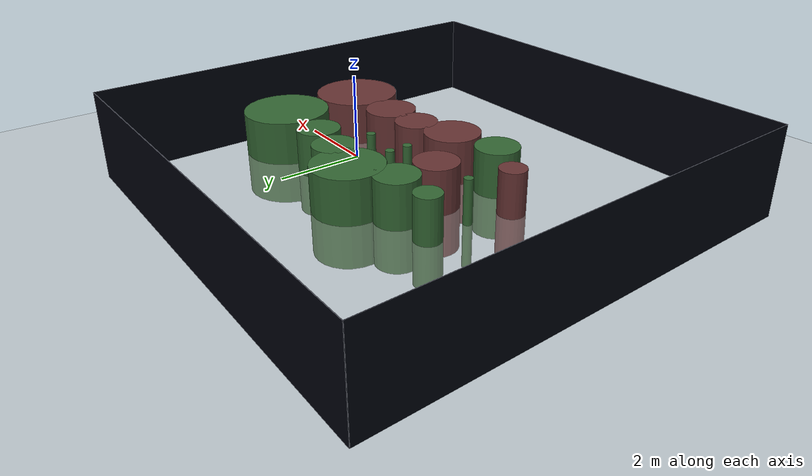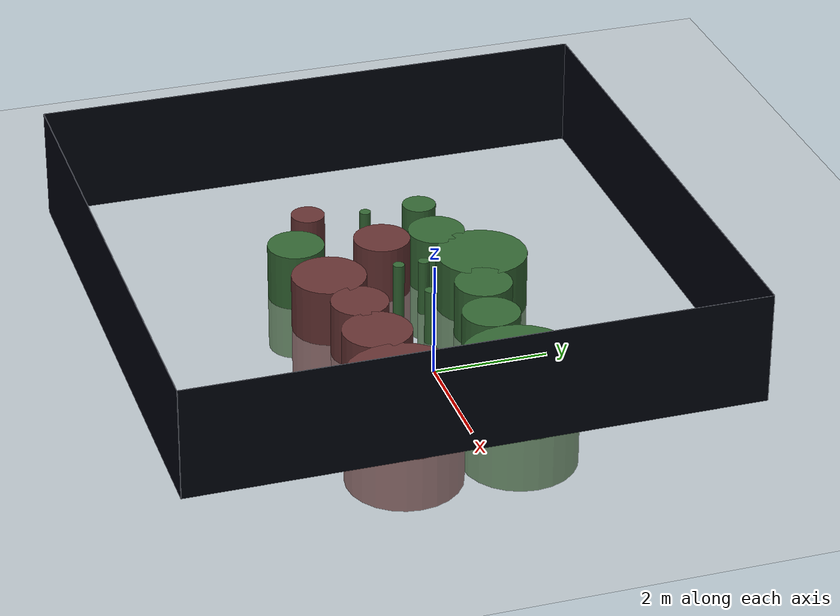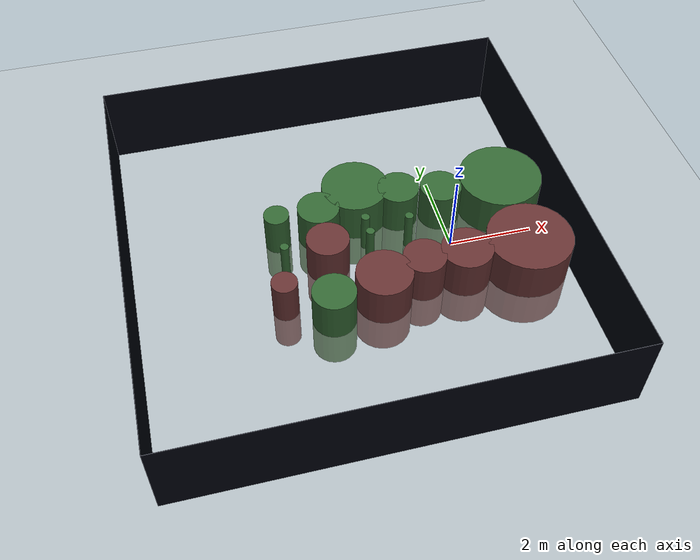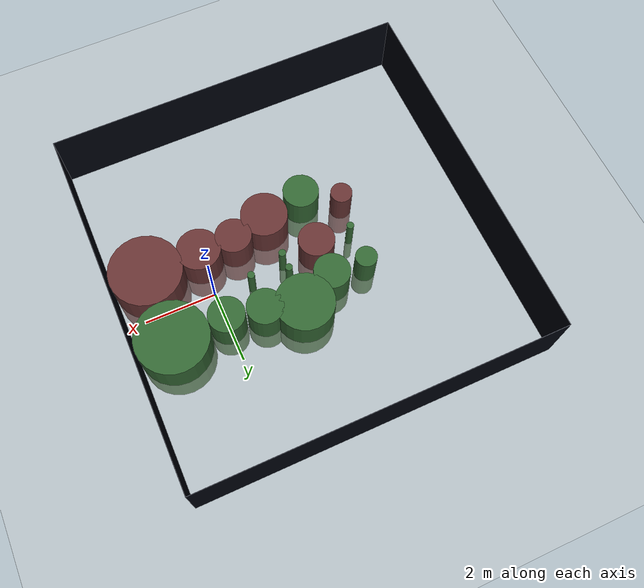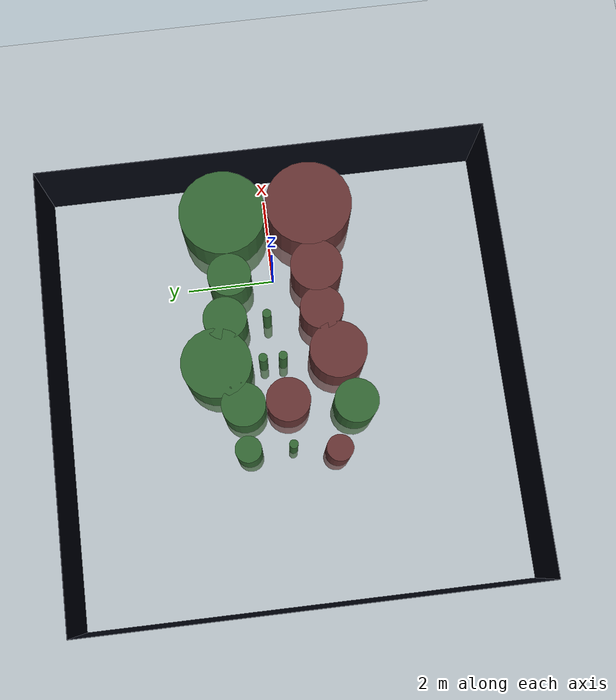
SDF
<?xml version="1.0"?>
<sdf version='1.8'>
    <world name='maze'>
        <physics name='1ms' type='ignored'>
            <max_step_size>0.003</max_step_size>
            <real_time_factor>1</real_time_factor>
            <real_time_update_rate>1000</real_time_update_rate>
        </physics>
        <plugin name='ignition::gazebo::systems::Physics' filename='ignition-gazebo-physics-system' />
        <plugin name='ignition::gazebo::systems::UserCommands' filename='ignition-gazebo-user-commands-system' />
        <plugin name='ignition::gazebo::systems::SceneBroadcaster' filename='ignition-gazebo-scene-broadcaster-system' />
        <plugin name='ignition::gazebo::systems::Contact' filename='ignition-gazebo-contact-system' />
        <light name='sun' type='directional'>
            <cast_shadows>1</cast_shadows>
            <pose>0 0 10 0 -0 0</pose>
            <diffuse>0.8 0.8 0.8 1</diffuse>
            <specular>0.2 0.2 0.2 1</specular>
            <attenuation>
                <range>1000</range>
                <constant>0.90000000000000002</constant>
                <linear>0.01</linear>
                <quadratic>0.001</quadratic>
            </attenuation>
            <direction>-0.5 0.1 -0.9</direction>
            <spot>
                <inner_angle>0</inner_angle>
                <outer_angle>0</outer_angle>
                <falloff>0</falloff>
            </spot>
        </light>
        <gravity>0 0 -9.8</gravity>
        <magnetic_field>6e-06 2.3e-05 -4.2e-05</magnetic_field>
        <atmosphere type='adiabatic' />
        <scene>
            <ambient>0.4 0.4 0.4 1</ambient>
            <background>0.7 0.7 0.7 1</background>
            <shadows>1</shadows>
        </scene>
        <model name='ground_plane'>
            <static>1</static>
            <link name='link'>
                <collision name='collision'>
                    <geometry>
                        <plane>
                            <normal>0 0 1</normal>
                            <size>100 100</size>
                        </plane>
                    </geometry>
                    <surface>
                        <friction>
                            <ode />
                        </friction>
                        <bounce />
                        <contact />
                    </surface>
                </collision>
                <visual name='visual'>
                    <geometry>
                        <plane>
                            <normal>0 0 1</normal>
                            <size>100 100</size>
                        </plane>
                    </geometry>
                    <material>
                        <ambient>0.8 0.8 0.8 1</ambient>
                        <diffuse>0.8 0.8 0.8 1</diffuse>
                        <specular>0.8 0.8 0.8 1</specular>
                    </material>
                    <plugin name='__default__' filename='__default__' />
                </visual>
            </link>
            <plugin name='__default__' filename='__default__' />
            <pose>0 0 0 0 -0 0</pose>
        </model>

        <model name='border'>
            <pose>0 0 1 0 0 0</pose>
            <static>true</static>
            <link name='wall1'>
                <pose>-7.5 -0 0 0 0 0</pose>
                <static>true</static>
                <collision name='wall1_collision'>
                    <geometry>
                        <box>
                            <size>0.01 10 2</size>
                        </box>
                    </geometry>
                </collision>
                <visual name='wall1_visual'>
                    <geometry>
                        <box>
                            <size>0.01 10 2</size>
                        </box>
                    </geometry>
                    <material>
                        <ambient>0.1 0.1 0.1 1</ambient>
                        <diffuse>0 0.01 0.05 1</diffuse>
                        <specular>0 0.01 0.05 1</specular>
                    </material>
                </visual>
            </link>
            <link name='wall2'>
                <pose>2.5 0 0 0 0 0</pose>
                <static>true</static>
                <collision name='wall2_collision'>
                    <geometry>
                        <box>
                            <size>0.01 10 2</size>
                        </box>
                    </geometry>
                </collision>
                <visual name='wall2_visual'>
                    <geometry>
                        <box>
                            <size>0.01 10 2</size>
                        </box>
                    </geometry>
                    <material>
                        <ambient>0.1 0.1 0.1 1</ambient>
                        <diffuse>0 0.01 0.05 1</diffuse>
                        <specular>0 0.01 0.05 1</specular>
                    </material>
                </visual>
            </link>
            <link name='wall3'>
                <pose>-2.5 5.005 0 0 0 0</pose>
                <static>true</static>
                <collision name='wall3_collision'>
                    <geometry>
                        <box>
                            <size>10 0.01 2</size>
                        </box>
                    </geometry>
                </collision>
                <visual name='wall3_visual'>
                    <geometry>
                        <box>
                            <size>10 0.01 2</size>
                        </box>
                    </geometry>
                    <material>
                        <ambient>0.1 0.1 0.1 1</ambient>
                        <diffuse>0 0.01 0.05 1</diffuse>
                        <specular>0 0.01 0.05 1</specular>
                    </material>
                </visual>
            </link>
            <link name='wall4'>
                <pose>-2.5 -5.005 0 0 0 0</pose>
                <static>true</static>
                <collision name='wall4_collision'>
                    <geometry>
                        <box>
                            <size>10 0.01 2</size>
                        </box>
                    </geometry>
                    <material>
                        <ambient>0.1 0.1 0.1 1</ambient>
                        <diffuse>0 0.01 0.05 1</diffuse>
                        <specular>0 0.01 0.05 1</specular>
                    </material>
                </collision>
                <visual name='wall4_visual'>
                    <geometry>
                        <box>
                            <size>10 0.01 2</size>
                        </box>
                    </geometry>
                    <material>
                        <ambient>0.1 0.1 0.1 1</ambient>
                        <diffuse>0 0.01 0.05 1</diffuse>
                        <specular>0 0.01 0.05 1</specular>
                    </material>
                </visual>
            </link>
        </model>
        <model name='obstacles'>
            <!-- Left side cylinders -->
            <link name='cylinder_left_-1'>
                <pose>1.5 -1 0 0 0 0</pose>
                <static>true</static>
                <collision name='cylinder_left_-1_collision'>
                    <geometry>
                        <cylinder>
                            <radius>1.0</radius>
                            <length>2</length>
                        </cylinder>
                    </geometry>
                </collision>
                <visual name='cylinder_left_-1_visual'>
                    <geometry>
                        <cylinder>
                            <radius>1.0</radius>
                            <length>2</length>
                        </cylinder>
                    </geometry>
                    <material>
                        <ambient>0.2 0.1 0.1 1</ambient>
                        <diffuse>0.4 0.2 0.2 1</diffuse>
                        <specular>0.1 0.05 0.05 1</specular>
                    </material>
                </visual>
            </link>
            <link name='cylinder_left_0'>
                <pose>0 -1 0 0 0 0</pose>
                <static>true</static>
                <collision name='cylinder_left_0_collision'>
                    <geometry>
                        <cylinder>
                            <radius>0.6</radius>
                            <length>2</length>
                        </cylinder>
                    </geometry>
                </collision>
                <visual name='cylinder_left_0_visual'>
                    <geometry>
                        <cylinder>
                            <radius>0.6</radius>
                            <length>2</length>
                        </cylinder>
                    </geometry>
                    <material>
                        <ambient>0.2 0.1 0.1 1</ambient>
                        <diffuse>0.4 0.2 0.2 1</diffuse>
                        <specular>0.1 0.05 0.05 1</specular>
                    </material>
                </visual>
            </link>

            <link name='cylinder_left_1'>
                <pose>-1 -1 0 0 0 0</pose>
                <static>true</static>
                <collision name='cylinder_left_1_collision'>
                    <geometry>
                        <cylinder>
                            <radius>0.5</radius>
                            <length>2</length>
                        </cylinder>
                    </geometry>
                </collision>
                <visual name='cylinder_left_1_visual'>
                    <geometry>
                        <cylinder>
                            <radius>0.5</radius>
                            <length>2</length>
                        </cylinder>
                    </geometry>
                    <material>
                        <ambient>0.2 0.1 0.1 1</ambient>
                        <diffuse>0.4 0.2 0.2 1</diffuse>
                        <specular>0.1 0.05 0.05 1</specular>
                    </material>
                </visual>
            </link>

            <link name='cylinder_left_2'>
                <pose>-2 -1.25 0 0 0 0</pose>
                <static>true</static>
                <collision name='cylinder_left_2_collision'>
                    <geometry>
                        <cylinder>
                            <radius>0.65</radius>
                            <length>2</length>
                        </cylinder>
                    </geometry>
                </collision>
                <visual name='cylinder_left_2_visual'>
                    <geometry>
                        <cylinder>
                            <radius>0.65</radius>
                            <length>2</length>
                        </cylinder>
                    </geometry>
                    <material>
                        <ambient>0.2 0.1 0.1 1</ambient>
                        <diffuse>0.4 0.2 0.2 1</diffuse>
                        <specular>0.1 0.05 0.05 1</specular>
                    </material>
                </visual>
            </link>

            <link name='cylinder_left_3'>
                <pose>-3 0 0 0 0 0</pose>
                <static>true</static>
                <collision name='cylinder_left_3_collision'>
                    <geometry>
                        <cylinder>
                            <radius>0.5</radius>
                            <length>2</length>
                        </cylinder>
                    </geometry>
                </collision>
                <visual name='cylinder_left_3_visual'>
                    <geometry>
                        <cylinder>
                            <radius>0.5</radius>
                            <length>2</length>
                        </cylinder>
                    </geometry>
                    <material>
                        <ambient>0.2 0.1 0.1 1</ambient>
                        <diffuse>0.4 0.2 0.2 1</diffuse>
                        <specular>0.1 0.05 0.05 1</specular>
                    </material>
                </visual>
            </link>

            <link name='cylinder_left_4'>
                <pose>-4.2 -1 0 0 0 0</pose>
                <static>true</static>
                <collision name='cylinder_left_4_collision'>
                    <geometry>
                        <cylinder>
                            <radius>0.3</radius>
                            <length>2</length>
                        </cylinder>
                    </geometry>
                </collision>
                <visual name='cylinder_left_4_visual'>
                    <geometry>
                        <cylinder>
                            <radius>0.3</radius>
                            <length>2</length>
                        </cylinder>
                    </geometry>
                    <material>
                        <ambient>0.2 0.1 0.1 1</ambient>
                        <diffuse>0.4 0.2 0.2 1</diffuse>
                        <specular>0.1 0.05 0.05 1</specular>
                    </material>
                </visual>
            </link>

            <!-- Right side cylinders -->
            <link name='cylinder_med_0'>
                <pose>-1 1.2 0 0 0 0</pose>
                <static>true</static>
                <collision name='cylinder_med_0_collision'>
                    <geometry>
                        <cylinder>
                            <radius>0.5</radius>
                            <length>2</length>
                        </cylinder>
                    </geometry>
                </collision>
                <visual name='cylinder_med_0_collision'>
                    <geometry>
                        <cylinder>
                            <radius>0.5</radius>
                            <length>2</length>
                        </cylinder>
                    </geometry>
                    <material>
                        <ambient>0.1 0.2 0.1 1</ambient>
                        <diffuse>0.2 0.4 0.2 1</diffuse>
                        <specular>0.05 0.1 0.05 1</specular>
                    </material>
                </visual>
            </link>
            <link name='cylinder_right_0'>
                <pose>0 1 0 0 0 0</pose>
                <static>true</static>
                <collision name='cylinder_right_0_collision'>
                    <geometry>
                        <cylinder>
                            <radius>0.5</radius>
                            <length>2</length>
                        </cylinder>
                    </geometry>
                </collision>
                <visual name='cylinder_right_0_visual'>
                    <geometry>
                        <cylinder>
                            <radius>0.5</radius>
                            <length>2</length>
                        </cylinder>
                    </geometry>
                    <material>
                        <ambient>0.1 0.2 0.1 1</ambient>
                        <diffuse>0.2 0.4 0.2 1</diffuse>
                        <specular>0.05 0.1 0.05 1</specular>
                    </material>
                </visual>
            </link>

            <link name='cylinder_right_1'>
                <pose>1.5 1 0 0 0 0</pose>
                <static>true</static>
                <collision name='cylinder_right_1_collision'>
                    <geometry>
                        <cylinder>
                            <radius>1.0</radius>
                            <length>2</length>
                        </cylinder>
                    </geometry>
                </collision>
                <visual name='cylinder_right_1_visual'>
                    <geometry>
                        <cylinder>
                            <radius>1.0</radius>
                            <length>2</length>
                        </cylinder>
                    </geometry>
                    <material>
                        <ambient>0.1 0.2 0.1 1</ambient>
                        <diffuse>0.2 0.4 0.2 1</diffuse>
                        <specular>0.05 0.1 0.05 1</specular>
                    </material>
                </visual>
            </link>
            <link name='cylinder_right_2'>
                <pose>-2 1.5 0 0 0 0</pose>
                <static>true</static>
                <collision name='cylinder_right_2_collision'>
                    <geometry>
                        <cylinder>
                            <radius>0.8</radius>
                            <length>2</length>
                        </cylinder>
                    </geometry>
                </collision>
                <visual name='cylinder_right_2_visual'>
                    <geometry>
                        <cylinder>
                            <radius>0.8</radius>
                            <length>2</length>
                        </cylinder>
                    </geometry>
                    <material>
                        <ambient>0.1 0.2 0.1 1</ambient>
                        <diffuse>0.2 0.4 0.2 1</diffuse>
                        <specular>0.05 0.1 0.05 1</specular>
                    </material>
                </visual>
            </link>

            <link name='cylinder_right_3_2'>
                <pose>-3.2 -1.5 0 0 0 0</pose>
                <static>true</static>
                <collision name='cylinder_right_3_2_collision'>
                    <geometry>
                        <cylinder>
                            <radius>0.5</radius>
                            <length>2</length>
                        </cylinder>
                    </geometry>
                </collision>
                <visual name='cylinder_right_3_2_visual'>
                    <geometry>
                        <cylinder>
                            <radius>0.5</radius>
                            <length>2</length>
                        </cylinder>
                    </geometry>
                    <material>
                        <ambient>0.1 0.2 0.1 1</ambient>
                        <diffuse>0.2 0.4 0.2 1</diffuse>
                        <specular>0.05 0.1 0.05 1</specular>
                    </material>
                </visual>
            </link>
            <link name='cylinder_right_3'>
                <pose>-3 1 0 0 0 0</pose>
                <static>true</static>
                <collision name='cylinder_right_3_collision'>
                    <geometry>
                        <cylinder>
                            <radius>0.5</radius>
                            <length>2</length>
                        </cylinder>
                    </geometry>
                </collision>
                <visual name='cylinder_right_3_visual'>
                    <geometry>
                        <cylinder>
                            <radius>0.5</radius>
                            <length>2</length>
                        </cylinder>
                    </geometry>
                    <material>
                        <ambient>0.1 0.2 0.1 1</ambient>
                        <diffuse>0.2 0.4 0.2 1</diffuse>
                        <specular>0.05 0.1 0.05 1</specular>
                    </material>
                </visual>
            </link>

            <link name='cylinder_right_4'>
                <pose>-4 1 0 0 0 0</pose>
                <static>true</static>
                <collision name='cylinder_right_4_collision'>
                    <geometry>
                        <cylinder>
                            <radius>0.3</radius>
                            <length>2</length>
                        </cylinder>
                    </geometry>
                </collision>
                <visual name='cylinder_right_4_visual'>
                    <geometry>
                        <cylinder>
                            <radius>0.3</radius>
                            <length>2</length>
                        </cylinder>
                    </geometry>
                    <material>
                        <ambient>0.1 0.2 0.1 1</ambient>
                        <diffuse>0.2 0.4 0.2 1</diffuse>
                        <specular>0.05 0.1 0.05 1</specular>
                    </material>
                </visual>
            </link>
            <link name='middle_1'>
                <pose>-1 .25 0 0 0 0</pose>
                <static>true</static>
                <collision name='middle_1_collision'>
                    <geometry>
                        <cylinder>
                            <radius>0.1</radius>
                            <length>2</length>
                        </cylinder>
                    </geometry>
                </collision>
                <visual name='middle_1_visual'>
                    <geometry>
                        <cylinder>
                            <radius>0.1</radius>
                            <length>2</length>
                        </cylinder>
                    </geometry>
                    <material>
                        <ambient>0.1 0.2 0.1 1</ambient>
                        <diffuse>0.2 0.4 0.2 1</diffuse>
                        <specular>0.05 0.1 0.05 1</specular>
                    </material>
                </visual>
            </link>
            <link name='middle_2_1'>
                <pose>-2 0 0 0 0 0</pose>
                <static>true</static>
                <collision name='middle_2_1_collision'>
                    <geometry>
                        <cylinder>
                            <radius>0.1</radius>
                            <length>2</length>
                        </cylinder>
                    </geometry>
                </collision>
                <visual name='middle_2_1_visual'>
                    <geometry>
                        <cylinder>
                            <radius>0.1</radius>
                            <length>2</length>
                        </cylinder>
                    </geometry>
                    <material>
                        <ambient>0.1 0.2 0.1 1</ambient>
                        <diffuse>0.2 0.4 0.2 1</diffuse>
                        <specular>0.05 0.1 0.05 1</specular>
                    </material>
                </visual>
            </link>
            <link name='middle_2_2'>
                <pose>-2 0.45 0 0 0 0</pose>
                <static>true</static>
                <collision name='middle_2_2_collision'>
                    <geometry>
                        <cylinder>
                            <radius>0.1</radius>
                            <length>2</length>
                        </cylinder>
                    </geometry>
                </collision>
                <visual name='middle_2_1_visual'>
                    <geometry>
                        <cylinder>
                            <radius>0.1</radius>
                            <length>2</length>
                        </cylinder>
                    </geometry>
                    <material>
                        <ambient>0.1 0.2 0.1 1</ambient>
                        <diffuse>0.2 0.4 0.2 1</diffuse>
                        <specular>0.05 0.1 0.05 1</specular>
                    </material>
                </visual>
            </link>
            <link name='middle_2'>
                <pose>-2 0 0 0 0 0</pose>
                <static>true</static>
                <collision name='middle_2_collision'>
                    <geometry>
                        <cylinder>
                            <radius>0.1</radius>
                            <length>2</length>
                        </cylinder>
                    </geometry>
                </collision>
                <visual name='middle_2_visual'>
                    <geometry>
                        <cylinder>
                            <radius>0.1</radius>
                            <length>2</length>
                        </cylinder>
                    </geometry>
                    <material>
                        <ambient>0.1 0.2 0.1 1</ambient>
                        <diffuse>0.2 0.4 0.2 1</diffuse>
                        <specular>0.05 0.1 0.05 1</specular>
                    </material>
                </visual>
            </link>
            <link name='middle_3'>
                <pose>-4 0 0 0 0 0</pose>
                <static>true</static>
                <collision name='middle_3_collision'>
                    <geometry>
                        <cylinder>
                            <radius>0.1</radius>
                            <length>2</length>
                        </cylinder>
                    </geometry>
                </collision>
                <visual name='middle_3_visual'>
                    <geometry>
                        <cylinder>
                            <radius>0.1</radius>
                            <length>2</length>
                        </cylinder>
                    </geometry>
                    <material>
                        <ambient>0.1 0.2 0.1 1</ambient>
                        <diffuse>0.2 0.4 0.2 1</diffuse>
                        <specular>0.05 0.1 0.05 1</specular>
                    </material>
                </visual>
            </link>

        </model>
    </world>
</sdf>
